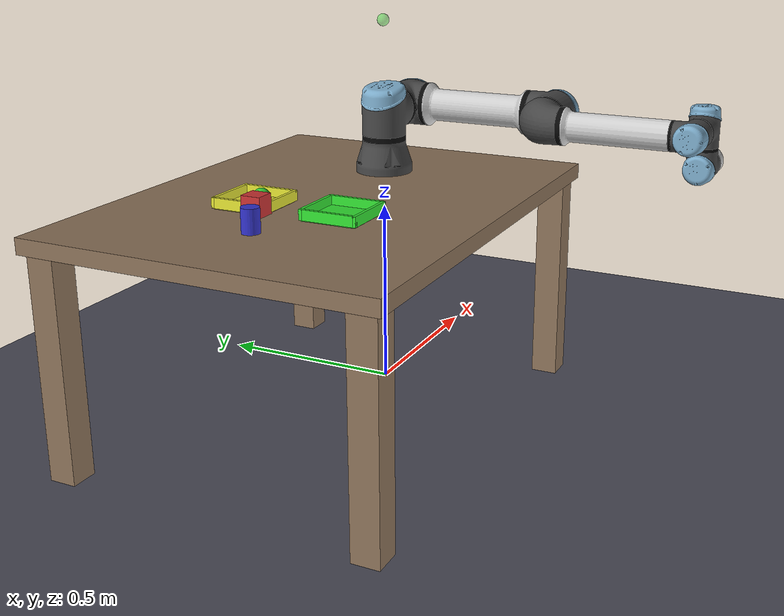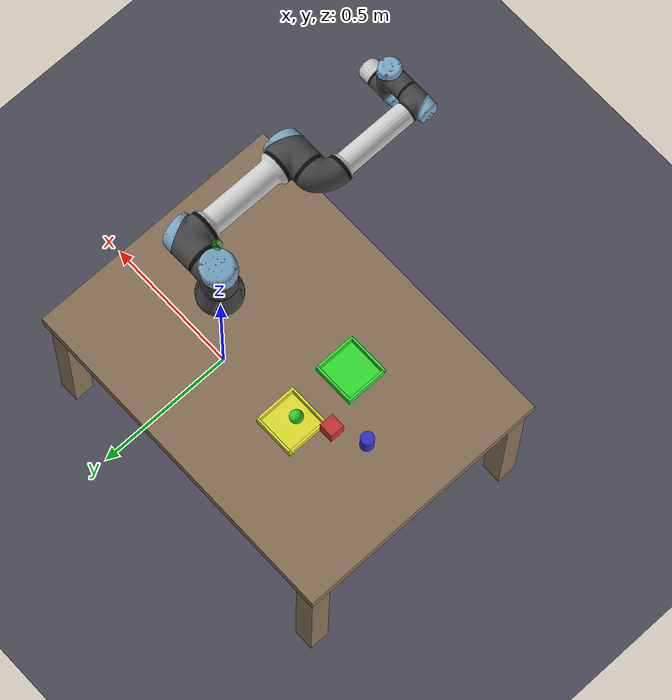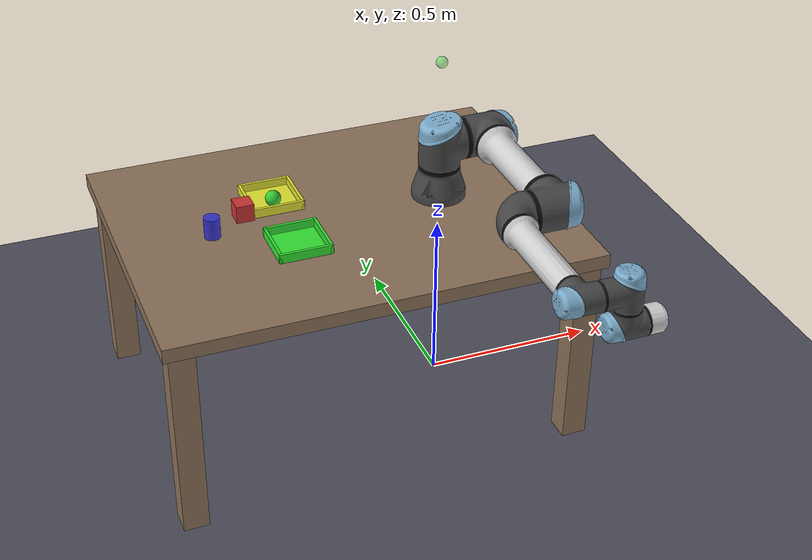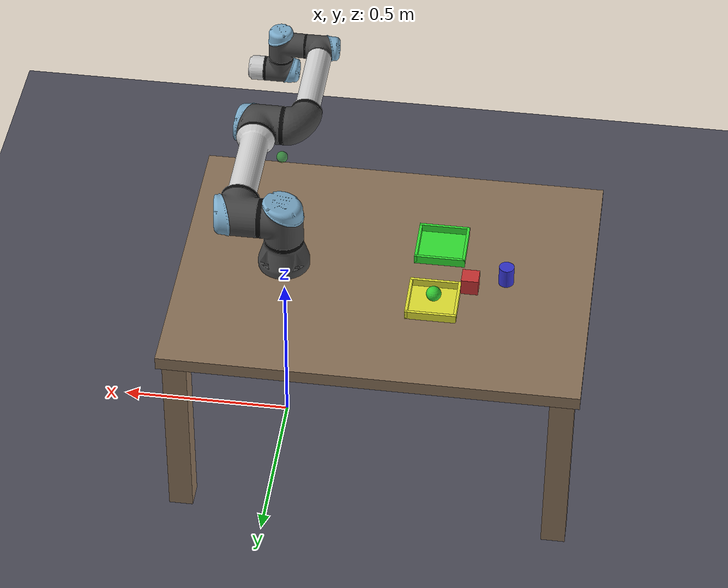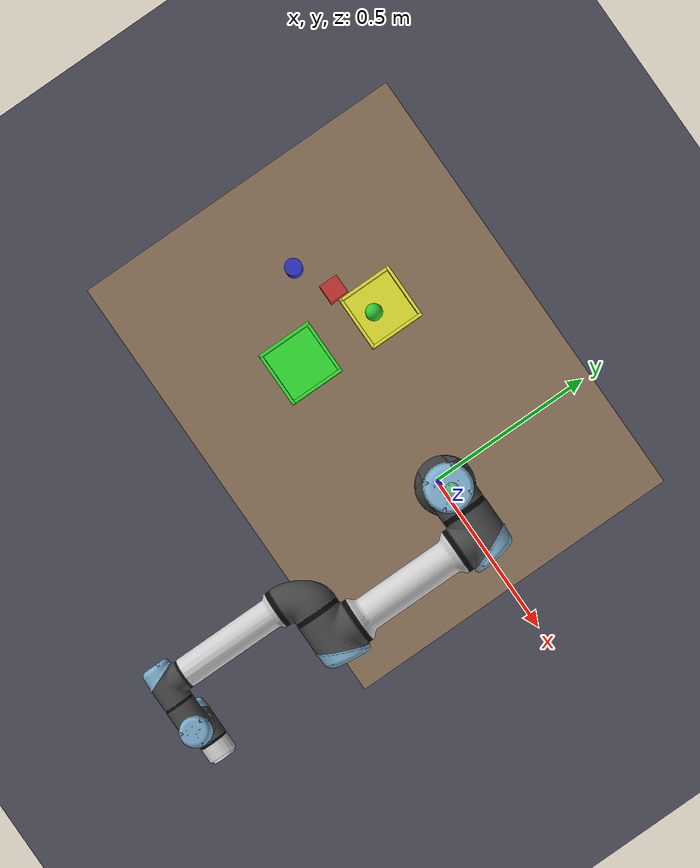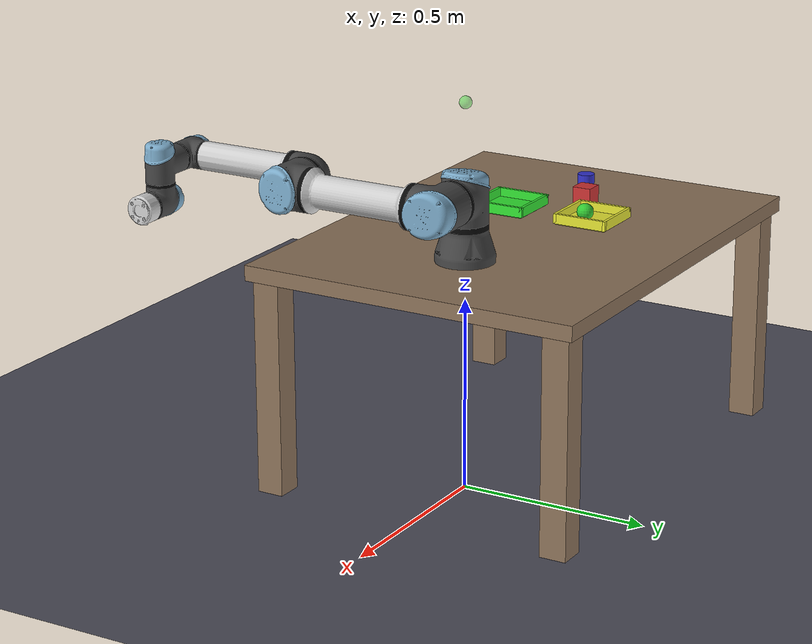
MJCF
<mujoco model="ur5e_2f85">
  <compiler angle="radian" meshdir="." autolimits="true"/>

  <option integrator="implicitfast" cone="elliptic" impratio="10"/>

  <visual>
    <map znear="0.005"/>
  </visual>

  <default>
    <default class="ur5e">
      <material specular="0.5" shininess="0.25"/>
      <joint axis="0 1 0" range="-6.28319 6.28319" armature="0.1"/>
      <general gaintype="fixed" biastype="affine" ctrlrange="-6.2831 6.2831" gainprm="2000" biasprm="0 -2000 -400"
        forcerange="-150 150"/>
      <default class="size3">
        <default class="size3_limited">
          <joint range="-3.1415 3.1415"/>
          <general ctrlrange="-3.1415 3.1415"/>
        </default>
      </default>
      <default class="size1">
        <general gainprm="500" biasprm="0 -500 -100" forcerange="-28 28"/>
      </default>
      <default class="visual">
        <geom type="mesh" contype="0" conaffinity="0" group="2"/>
      </default>
      <default class="collision">
        <geom type="capsule" group="3"/>
        <default class="eef_collision">
          <geom type="cylinder"/>
        </default>
      </default>
      <site size="0.001" rgba="0.5 0.5 0.5 0.3" group="4"/>
    </default>

    <default class="2f85">
      <general biastype="affine"/>
      <joint axis="1 0 0"/>
      <default class="g_driver">
        <joint range="0 0.8" armature="0.005" damping="0.1" solimplimit="0.95 0.99 0.001" solreflimit="0.005 1"/>
      </default>
      <default class="g_follower">
        <joint range="-0.872664 0.872664" armature="0.001" pos="0 -0.018 0.0065" solimplimit="0.95 0.99 0.001"
          solreflimit="0.005 1"/>
      </default>
      <default class="g_spring_link">
        <joint range="-0.29670597283 0.8" armature="0.001" stiffness="0.05" springref="2.62" damping="0.00125"/>
      </default>
      <default class="g_coupler">
        <joint range="-1.57 0" armature="0.001" solimplimit="0.95 0.99 0.001" solreflimit="0.005 1"/>
      </default>
      <default class="g_visual">
        <geom type="mesh" contype="0" conaffinity="0" group="2"/>
      </default>
      <default class="g_collision">
        <geom type="mesh" group="3"/>
        <default class="g_pad_box1">
          <geom mass="0" type="box" pos="0 -0.0026 0.028125" size="0.011 0.004 0.009375" friction="0.7"
            solimp="0.95 0.99 0.001" solref="0.004 1" priority="1" rgba="0.55 0.55 0.55 1"/>
        </default>
        <default class="g_pad_box2">
          <geom mass="0" type="box" pos="0 -0.0026 0.009375" size="0.011 0.004 0.009375" friction="0.6"
            solimp="0.95 0.99 0.001" solref="0.004 1" priority="1" rgba="0.45 0.45 0.45 1"/>
        </default>
      </default>
    </default>
  </default>

  <asset>
    <material name="arm_black" rgba="0.033 0.033 0.033 1"/>
    <material name="jointgray" rgba="0.278 0.278 0.278 1"/>
    <material name="linkgray" rgba="0.82 0.82 0.82 1"/>
    <material name="urblue" rgba="0.49 0.678 0.8 1"/>
    <material name="grip_black" rgba="0.149 0.149 0.149 1"/>
    <material name="grip_gray" rgba="0.4627 0.4627 0.4627 1"/>
    <material name="table_mat" rgba="0.55 0.45 0.35 1"/>

    <!-- UR5e meshes -->
    <mesh file="universal_robots_ur5e/assets/base_0.obj"/>
    <mesh file="universal_robots_ur5e/assets/base_1.obj"/>
    <mesh file="universal_robots_ur5e/assets/shoulder_0.obj"/>
    <mesh file="universal_robots_ur5e/assets/shoulder_1.obj"/>
    <mesh file="universal_robots_ur5e/assets/shoulder_2.obj"/>
    <mesh file="universal_robots_ur5e/assets/upperarm_0.obj"/>
    <mesh file="universal_robots_ur5e/assets/upperarm_1.obj"/>
    <mesh file="universal_robots_ur5e/assets/upperarm_2.obj"/>
    <mesh file="universal_robots_ur5e/assets/upperarm_3.obj"/>
    <mesh file="universal_robots_ur5e/assets/forearm_0.obj"/>
    <mesh file="universal_robots_ur5e/assets/forearm_1.obj"/>
    <mesh file="universal_robots_ur5e/assets/forearm_2.obj"/>
    <mesh file="universal_robots_ur5e/assets/forearm_3.obj"/>
    <mesh file="universal_robots_ur5e/assets/wrist1_0.obj"/>
    <mesh file="universal_robots_ur5e/assets/wrist1_1.obj"/>
    <mesh file="universal_robots_ur5e/assets/wrist1_2.obj"/>
    <mesh file="universal_robots_ur5e/assets/wrist2_0.obj"/>
    <mesh file="universal_robots_ur5e/assets/wrist2_1.obj"/>
    <mesh file="universal_robots_ur5e/assets/wrist2_2.obj"/>
    <mesh file="universal_robots_ur5e/assets/wrist3.obj"/>

    <!-- 2F-85 meshes (STL in mm, scaled to m) -->
    <mesh name="g_base_mount" file="robotiq_2f85/assets/base_mount.stl" scale="0.001 0.001 0.001"/>
    <mesh name="g_base" file="robotiq_2f85/assets/base.stl" scale="0.001 0.001 0.001"/>
    <mesh name="g_driver" file="robotiq_2f85/assets/driver.stl" scale="0.001 0.001 0.001"/>
    <mesh name="g_coupler" file="robotiq_2f85/assets/coupler.stl" scale="0.001 0.001 0.001"/>
    <mesh name="g_follower" file="robotiq_2f85/assets/follower.stl" scale="0.001 0.001 0.001"/>
    <mesh name="g_pad" file="robotiq_2f85/assets/pad.stl" scale="0.001 0.001 0.001"/>
    <mesh name="g_silicone_pad" file="robotiq_2f85/assets/silicone_pad.stl" scale="0.001 0.001 0.001"/>
    <mesh name="g_spring_link" file="robotiq_2f85/assets/spring_link.stl" scale="0.001 0.001 0.001"/>
  </asset>

  <worldbody>
    <light name="spotlight" mode="targetbodycom" target="wrist_2_link" pos="0 -1 2"/>
    <light name="top" pos="0 0.45 2.5" dir="0 0 -1" diffuse="0.7 0.7 0.7"/>

    <!-- ==================== UR5e arm ==================== -->
    <!-- arm is table-mounted (standard UR workstation): base sits on the 0.60
         table top, yawed 90 deg so the arm faces -x (toward the workspace) -->
    <body name="base" pos="0 0 0.60" quat="0.7071 0 0 -0.7071" childclass="ur5e">
      <inertial mass="4.0" pos="0 0 0" diaginertia="0.00443333156 0.00443333156 0.0072"/>
      <geom mesh="base_0" material="arm_black" class="visual"/>
      <geom mesh="base_1" material="jointgray" class="visual"/>
      <body name="shoulder_link" pos="0 0 0.163">
        <inertial mass="3.7" pos="0 0 0" diaginertia="0.0102675 0.0102675 0.00666"/>
        <joint name="shoulder_pan_joint" class="size3" axis="0 0 1"/>
        <geom mesh="shoulder_0" material="urblue" class="visual"/>
        <geom mesh="shoulder_1" material="arm_black" class="visual"/>
        <geom mesh="shoulder_2" material="jointgray" class="visual"/>
        <geom class="collision" size="0.06 0.06" pos="0 0 -0.04"/>
        <body name="upper_arm_link" pos="0 0.138 0" quat="1 0 1 0">
          <inertial mass="8.393" pos="0 0 0.2125" diaginertia="0.133886 0.133886 0.0151074"/>
          <joint name="shoulder_lift_joint" class="size3"/>
          <geom mesh="upperarm_0" material="linkgray" class="visual"/>
          <geom mesh="upperarm_1" material="arm_black" class="visual"/>
          <geom mesh="upperarm_2" material="jointgray" class="visual"/>
          <geom mesh="upperarm_3" material="urblue" class="visual"/>
          <geom class="collision" pos="0 -0.04 0" quat="1 1 0 0" size="0.06 0.06"/>
          <geom class="collision" size="0.05 0.2" pos="0 0 0.2"/>
          <body name="forearm_link" pos="0 -0.131 0.425">
            <inertial mass="2.275" pos="0 0.196 0" diaginertia="0.0311796 0.0311796 0.004095"/>
            <joint name="elbow_joint" class="size3_limited"/>
            <geom mesh="forearm_0" material="urblue" class="visual"/>
            <geom mesh="forearm_1" material="linkgray" class="visual"/>
            <geom mesh="forearm_2" material="arm_black" class="visual"/>
            <geom mesh="forearm_3" material="jointgray" class="visual"/>
            <geom class="collision" pos="0 0.08 0" quat="1 1 0 0" size="0.055 0.06"/>
            <geom class="collision" size="0.038 0.19" pos="0 0 0.2"/>
            <body name="wrist_1_link" pos="0 0 0.392" quat="1 0 1 0">
              <inertial mass="1.219" pos="0 0.127 0" diaginertia="0.0025599 0.0025599 0.0021942"/>
              <joint name="wrist_1_joint" class="size1"/>
              <geom mesh="wrist1_0" material="arm_black" class="visual"/>
              <geom mesh="wrist1_1" material="urblue" class="visual"/>
              <geom mesh="wrist1_2" material="jointgray" class="visual"/>
              <geom class="collision" pos="0 0.05 0" quat="1 1 0 0" size="0.04 0.07"/>
              <body name="wrist_2_link" pos="0 0.127 0">
                <inertial mass="1.219" pos="0 0.1 0" diaginertia="0.0025599 0.0025599 0.0021942"/>
                <joint name="wrist_2_joint" axis="0 0 1" class="size1"/>
                <geom mesh="wrist2_0" material="arm_black" class="visual"/>
                <geom mesh="wrist2_1" material="urblue" class="visual"/>
                <geom mesh="wrist2_2" material="jointgray" class="visual"/>
                <geom class="collision" size="0.04 0.06" pos="0 0 0.04"/>
                <geom class="collision" pos="0 0.02 0.1" quat="1 1 0 0" size="0.04 0.04"/>
                <body name="wrist_3_link" pos="0 0 0.1">
                  <inertial mass="0.1889" pos="0 0.0771683 0" quat="1 0 0 1"
                    diaginertia="0.000132134 9.90863e-05 9.90863e-05"/>
                  <joint name="wrist_3_joint" class="size1"/>
                  <geom material="linkgray" mesh="wrist3" class="visual"/>
                  <geom class="eef_collision" pos="0 0.08 0" quat="1 1 0 0" size="0.04 0.02"/>
                  <site name="attachment_site" pos="0 0.1 0" quat="-1 1 0 0"/>

                  <!-- ==================== Robotiq 2F-85 ==================== -->
                  <body name="base_mount" pos="0 0.1 0" quat="-1 1 0 0">
                    <body name="2f85_base_body" pos="0 0 0.007" childclass="2f85">
                      <geom class="g_visual" mesh="g_base_mount" material="grip_black"/>
                      <geom class="g_collision" mesh="g_base_mount"/>
                      <body name="gripper_base" pos="0 0 0.0038" quat="1 0 0 -1">
                        <inertial mass="0.777441" pos="0 -2.70394e-05 0.0354675" quat="1 -0.00152849 0 0"
                          diaginertia="0.000260285 0.000225381 0.000152708"/>
                        <geom class="g_visual" mesh="g_base" material="grip_black"/>
                        <geom class="g_collision" mesh="g_base"/>
                        <site name="pinch" pos="0 0 0.145" type="sphere" group="5" rgba="0.9 0.9 0.9 1" size="0.005"/>
                        <!-- wrist camera: looks along gripper +z (toward fingertips) -->
                        <camera name="wrist_cam" pos="0 0.045 0.06" fovy="58" xyaxes="-1 0 0 0 1 0"/>
                        <!-- Right-hand side 4-bar linkage -->
                        <body name="right_driver" pos="0 0.0306011 0.054904">
                          <inertial mass="0.00899563" pos="2.96931e-12 0.0177547 0.00107314" quat="0.681301 0.732003 0 0"
                            diaginertia="1.72352e-06 1.60906e-06 3.22006e-07"/>
                          <joint name="right_driver_joint" class="g_driver"/>
                          <geom class="g_visual" mesh="g_driver" material="grip_gray"/>
                          <geom class="g_collision" mesh="g_driver"/>
                          <body name="right_coupler" pos="0 0.0315 -0.0041">
                            <inertial mass="0.0140974" pos="0 0.00301209 0.0232175" quat="0.705636 -0.0455904 0.0455904 0.705636"
                              diaginertia="4.16206e-06 3.52216e-06 8.8831e-07"/>
                            <joint name="right_coupler_joint" class="g_coupler"/>
                            <geom class="g_visual" mesh="g_coupler" material="grip_black"/>
                            <geom class="g_collision" mesh="g_coupler"/>
                          </body>
                        </body>
                        <body name="right_spring_link" pos="0 0.0132 0.0609">
                          <inertial mass="0.0221642" pos="-8.65005e-09 0.0181624 0.0212658" quat="0.663403 -0.244737 0.244737 0.663403"
                            diaginertia="8.96853e-06 6.71726e-06 2.63931e-06"/>
                          <joint name="right_spring_link_joint" class="g_spring_link"/>
                          <geom class="g_visual" mesh="g_spring_link" material="grip_black"/>
                          <geom class="g_collision" mesh="g_spring_link"/>
                          <body name="right_follower" pos="0 0.055 0.0375">
                            <inertial mass="0.0125222" pos="0 -0.011046 0.0124786" quat="1 0.1664 0 0"
                              diaginertia="2.67428e-06 2.45508e-06 6.02031e-07"/>
                            <joint name="right_follower_joint" class="g_follower"/>
                            <geom class="g_visual" mesh="g_follower" material="grip_black"/>
                            <geom class="g_collision" mesh="g_follower"/>
                            <body name="right_pad" pos="0 -0.0189 0.01352">
                              <geom class="g_pad_box1" name="right_pad1"/>
                              <geom class="g_pad_box2" name="right_pad2"/>
                              <inertial mass="0.0035" pos="0 -0.0025 0.0185" quat="0.707107 0 0 0.707107"
                                diaginertia="4.73958e-07 3.64583e-07 1.23958e-07"/>
                              <geom class="g_visual" mesh="g_pad"/>
                              <body name="right_silicone_pad">
                                <geom class="g_visual" mesh="g_silicone_pad" material="grip_black"/>
                              </body>
                            </body>
                          </body>
                        </body>
                        <!-- Left-hand side 4-bar linkage -->
                        <body name="left_driver" pos="0 -0.0306011 0.054904" quat="0 0 0 1">
                          <inertial mass="0.00899563" pos="0 0.0177547 0.00107314" quat="0.681301 0.732003 0 0"
                            diaginertia="1.72352e-06 1.60906e-06 3.22006e-07"/>
                          <joint name="left_driver_joint" class="g_driver"/>
                          <geom class="g_visual" mesh="g_driver" material="grip_gray"/>
                          <geom class="g_collision" mesh="g_driver"/>
                          <body name="left_coupler" pos="0 0.0315 -0.0041">
                            <inertial mass="0.0140974" pos="0 0.00301209 0.0232175" quat="0.705636 -0.0455904 0.0455904 0.705636"
                              diaginertia="4.16206e-06 3.52216e-06 8.8831e-07"/>
                            <joint name="left_coupler_joint" class="g_coupler"/>
                            <geom class="g_visual" mesh="g_coupler" material="grip_black"/>
                            <geom class="g_collision" mesh="g_coupler"/>
                          </body>
                        </body>
                        <body name="left_spring_link" pos="0 -0.0132 0.0609" quat="0 0 0 1">
                          <inertial mass="0.0221642" pos="-8.65005e-09 0.0181624 0.0212658" quat="0.663403 -0.244737 0.244737 0.663403"
                            diaginertia="8.96853e-06 6.71726e-06 2.63931e-06"/>
                          <joint name="left_spring_link_joint" class="g_spring_link"/>
                          <geom class="g_visual" mesh="g_spring_link" material="grip_black"/>
                          <geom class="g_collision" mesh="g_spring_link"/>
                          <body name="left_follower" pos="0 0.055 0.0375">
                            <inertial mass="0.0125222" pos="0 -0.011046 0.0124786" quat="1 0.1664 0 0"
                              diaginertia="2.67428e-06 2.45508e-06 6.02031e-07"/>
                            <joint name="left_follower_joint" class="g_follower"/>
                            <geom class="g_visual" mesh="g_follower" material="grip_black"/>
                            <geom class="g_collision" mesh="g_follower"/>
                            <body name="left_pad" pos="0 -0.0189 0.01352">
                              <geom class="g_pad_box1" name="left_pad1"/>
                              <geom class="g_pad_box2" name="left_pad2"/>
                              <inertial mass="0.0035" pos="0 -0.0025 0.0185" quat="1 0 0 1"
                                diaginertia="4.73958e-07 3.64583e-07 1.23958e-07"/>
                              <geom class="g_visual" mesh="g_pad"/>
                              <body name="left_silicone_pad">
                                <geom class="g_visual" mesh="g_silicone_pad" material="grip_black"/>
                              </body>
                            </body>
                          </body>
                        </body>
                      </body>
                    </body>
                  </body>
                </body>
              </body>
            </body>
          </body>
        </body>
      </body>
    </body>

    <!-- ==================== Scene ==================== -->
    <geom name="floor" type="plane" size="2.5 2.5 0.1" rgba="0.3 0.3 0.35 1"/>

    <!-- table: top surface at z=0.60, x in [-0.90, 0.30], y in [-0.45, 0.45];
         the robot base sits on it at the origin, workspace extends in front (-x) -->
    <body name="table" pos="-0.30 0 0">
      <geom name="table_top" type="box" size="0.60 0.45 0.02" pos="0 0 0.58" material="table_mat"
        friction="1 0.005 0.0001" condim="4"/>
      <geom name="table_leg1" type="box" size="0.035 0.035 0.28" pos="0.55 0.40 0.28" material="table_mat"/>
      <geom name="table_leg2" type="box" size="0.035 0.035 0.28" pos="-0.55 0.40 0.28" material="table_mat"/>
      <geom name="table_leg3" type="box" size="0.035 0.035 0.28" pos="0.55 -0.40 0.28" material="table_mat"/>
      <geom name="table_leg4" type="box" size="0.035 0.035 0.28" pos="-0.55 -0.40 0.28" material="table_mat"/>
    </body>

    <!-- graspable objects: 5 cm cube, 4.4 cm sphere, d44x60 mm cylinder;
         poses and colors randomized per episode by the collector -->
    <body name="cube" pos="-0.55 0.05 0.635">
      <freejoint name="cube_joint"/>
      <geom name="cube_geom" type="box" size="0.025 0.025 0.025" mass="0.05" rgba="0.8 0.2 0.2 1"
        friction="1 0.005 0.0001" condim="4"/>
    </body>
    <body name="sphere" pos="-0.45 0.10 0.623">
      <freejoint name="sphere_joint"/>
      <!-- higher rolling friction (3rd coef): spheres otherwise spin forever
           on release and never pass the "at rest" success check -->
      <geom name="sphere_geom" type="sphere" size="0.022" mass="0.04" rgba="0.2 0.8 0.2 1"
        friction="1 0.02 0.01" condim="4"/>
    </body>
    <body name="cylinder" pos="-0.65 0.00 0.631">
      <freejoint name="cylinder_joint"/>
      <geom name="cylinder_geom" type="cylinder" size="0.022 0.03" mass="0.06" rgba="0.2 0.2 0.8 1"
        friction="1 0.005 0.0001" condim="4"/>
    </body>

    <!-- two place-target trays (7.4 cm footprint, 2 cm walls), static bodies:
         colors and xy positions set at runtime; tray floor top sits at 0.606 -->
    <body name="container_a" pos="-0.45 -0.12 0.60">
      <geom name="cont_a_base" type="box" size="0.07 0.07 0.003" pos="0 0 0.003" rgba="0.2 0.9 0.2 1"
        friction="1 0.005 0.0001" condim="4"/>
      <geom name="cont_a_wall_n" type="box" size="0.074 0.004 0.013" pos="0 0.070 0.016" rgba="0.2 0.9 0.2 1"
        friction="1 0.005 0.0001" condim="4"/>
      <geom name="cont_a_wall_s" type="box" size="0.074 0.004 0.013" pos="0 -0.070 0.016" rgba="0.2 0.9 0.2 1"
        friction="1 0.005 0.0001" condim="4"/>
      <geom name="cont_a_wall_e" type="box" size="0.004 0.074 0.013" pos="0.070 0 0.016" rgba="0.2 0.9 0.2 1"
        friction="1 0.005 0.0001" condim="4"/>
      <geom name="cont_a_wall_w" type="box" size="0.004 0.074 0.013" pos="-0.070 0 0.016" rgba="0.2 0.9 0.2 1"
        friction="1 0.005 0.0001" condim="4"/>
    </body>
    <body name="container_b" pos="-0.45 0.12 0.60">
      <geom name="cont_b_base" type="box" size="0.07 0.07 0.003" pos="0 0 0.003" rgba="0.9 0.9 0.2 1"
        friction="1 0.005 0.0001" condim="4"/>
      <geom name="cont_b_wall_n" type="box" size="0.074 0.004 0.013" pos="0 0.070 0.016" rgba="0.9 0.9 0.2 1"
        friction="1 0.005 0.0001" condim="4"/>
      <geom name="cont_b_wall_s" type="box" size="0.074 0.004 0.013" pos="0 -0.070 0.016" rgba="0.9 0.9 0.2 1"
        friction="1 0.005 0.0001" condim="4"/>
      <geom name="cont_b_wall_e" type="box" size="0.004 0.074 0.013" pos="0.070 0 0.016" rgba="0.9 0.9 0.2 1"
        friction="1 0.005 0.0001" condim="4"/>
      <geom name="cont_b_wall_w" type="box" size="0.004 0.074 0.013" pos="-0.070 0 0.016" rgba="0.9 0.9 0.2 1"
        friction="1 0.005 0.0001" condim="4"/>
    </body>

    <!-- teleop goal marker: shows where the IK target is; alpha is zeroed while
         recording camera frames so it never appears in the collected images -->
    <site name="tcp_goal" type="sphere" size="0.016" pos="0 0 1" rgba="0.2 0.9 0.2 0.45"/>

    <!-- third-person cameras (static), aimed at the workspace in front of the arm -->
    <camera name="front_cam" pos="-0.45 -0.95 1.25" fovy="50" xyaxes="0.9987 0.0531 0 -0.0266 0.5004 0.8653"/>
    <camera name="side_cam" pos="-0.25 1.15 1.30" fovy="50" xyaxes="-0.9962 0.0866 0 -0.0368 -0.4231 0.8913"/>
  </worldbody>

  <contact>
    <exclude body1="gripper_base" body2="left_driver"/>
    <exclude body1="gripper_base" body2="right_driver"/>
    <exclude body1="gripper_base" body2="left_spring_link"/>
    <exclude body1="gripper_base" body2="right_spring_link"/>
    <exclude body1="right_coupler" body2="right_follower"/>
    <exclude body1="left_coupler" body2="left_follower"/>
  </contact>

  <tendon>
    <fixed name="split">
      <joint joint="right_driver_joint" coef="0.5"/>
      <joint joint="left_driver_joint" coef="0.5"/>
    </fixed>
  </tendon>

  <equality>
    <connect anchor="0 0 0" body1="right_follower" body2="right_coupler" solimp="0.95 0.99 0.001" solref="0.005 1"/>
    <connect anchor="0 0 0" body1="left_follower" body2="left_coupler" solimp="0.95 0.99 0.001" solref="0.005 1"/>
    <joint joint1="right_driver_joint" joint2="left_driver_joint" polycoef="0 1 0 0 0" solimp="0.95 0.99 0.001"
      solref="0.005 1"/>
  </equality>

  <actuator>
    <general class="size3" name="shoulder_pan" joint="shoulder_pan_joint"/>
    <general class="size3" name="shoulder_lift" joint="shoulder_lift_joint"/>
    <general class="size3_limited" name="elbow" joint="elbow_joint"/>
    <general class="size1" name="wrist_1" joint="wrist_1_joint"/>
    <general class="size1" name="wrist_2" joint="wrist_2_joint"/>
    <general class="size1" name="wrist_3" joint="wrist_3_joint"/>
    <general class="2f85" name="fingers_actuator" tendon="split" forcerange="-5 5" ctrlrange="0 255"
      gainprm="0.3137255 0 0" biasprm="0 -100 -10"/>
  </actuator>

  <!-- qpos order: 6 arm joints, 8 gripper joints, 7 freejoint x3 (cube, sphere, cylinder) -->
  <keyframe>
    <key name="home" qpos="-1.8309 -1.5255 1.7351 -1.7798 -1.5713 -0.2525  0 0 0 0 0 0 0 0  -0.55 0.05 0.635 1 0 0 0  -0.45 0.10 0.623 1 0 0 0  -0.65 0.00 0.631 1 0 0 0"
      ctrl="-1.8309 -1.5255 1.7351 -1.7798 -1.5713 -0.2525 0"/>
  </keyframe>
</mujoco>
